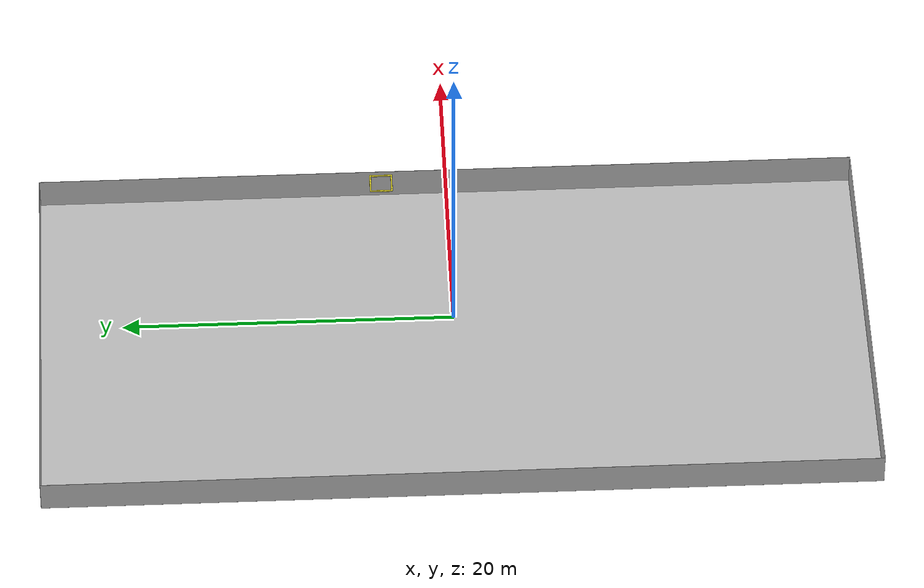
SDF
<?xml version="1.0" ?>
<sdf version="1.6">
  <world name="sauvc_pool">
	<!-- Setting the physics and scene -->
    <scene>
      <ambient>0.01 0.01 0.01 1.0</ambient>
      <sky>
        <clouds>
          <speed>12</speed>
        </clouds>
      </sky>
      <shadows>1</shadows>
    </scene>

    <!-- Lights: Global -->
    <light type="directional" name="sun1">
      <pose>20 0 100 0 0 0</pose>
      <diffuse>1 1 1 1</diffuse>
      <specular>1 1 1 1</specular>
      <direction>0.3 0.3 -1</direction>
      <cast_shadows>false</cast_shadows>
    </light>
    <light type="directional" name="sun_diffuse">
      <pose>-20 0 -100 0 0 0</pose>
      <diffuse>0.46 0.46 0.46 1</diffuse>
      <specular>0 0 0 1</specular>
      <direction>-0.3 -0.3 -1</direction>
      <cast_shadows>false</cast_shadows>
    </light>

    <!-- Lights: Focus -->
    <light name='q_gate_focus_1' type='point'>
      <pose frame=''>16.343 -16.9786 1 0 -0 0</pose>
      <diffuse>0.5 0.5 0.5 1</diffuse>
      <specular>0.1 0.1 0.1 1</specular>
      <attenuation>
        <range>20</range>
        <constant>0.5</constant>
        <linear>0.01</linear>
        <quadratic>0.001</quadratic>
      </attenuation>
      <cast_shadows>0</cast_shadows>
      <direction>0 0 -1</direction>
    </light>
    <light name='q_gate_focus_2' type='point'>
      <pose frame=''>10.5076 -15.5392 1 0 -0 0</pose>
      <diffuse>0.5 0.5 0.5 1</diffuse>
      <specular>0.1 0.1 0.1 1</specular>
      <attenuation>
        <range>20</range>
        <constant>0.5</constant>
        <linear>0.01</linear>
        <quadratic>0.001</quadratic>
      </attenuation>
      <cast_shadows>0</cast_shadows>
      <direction>0 0 -1</direction>
    </light>

	<light name='gate_focus_1' type='point'>
      <pose frame=''>11.1512 9.32795 1 0 -0 0</pose>
      <diffuse>0.5 0.5 0.5 1</diffuse>
      <specular>0.1 0.1 0.1 1</specular>
      <attenuation>
        <range>20</range>
        <constant>0.5</constant>
        <linear>0.01</linear>
        <quadratic>0.001</quadratic>
      </attenuation>
      <cast_shadows>0</cast_shadows>
      <direction>0 0 -1</direction>
    </light>
    <light name='gate_focus_2' type='point'>
      <pose frame=''>11.0884 8.42621 1 0 -0 0</pose>
      <diffuse>0.5 0.5 0.5 1</diffuse>
      <specular>0.1 0.1 0.1 1</specular>
      <attenuation>
        <range>20</range>
        <constant>0.5</constant>
        <linear>0.01</linear>
        <quadratic>0.001</quadratic>
      </attenuation>
      <cast_shadows>0</cast_shadows>
      <direction>0 0 -1</direction>
    </light>
    <light name='gate_focus_3' type='point'>
      <pose frame=''>3.57644 5.66953 1 0 -0 0</pose>
      <diffuse>0.5 0.5 0.5 1</diffuse>
      <specular>0.1 0.1 0.1 1</specular>
      <attenuation>
        <range>20</range>
        <constant>0.5</constant>
        <linear>0.01</linear>
        <quadratic>0.001</quadratic>
      </attenuation>
      <cast_shadows>0</cast_shadows>
      <direction>0 0 -1</direction>
    </light>

	<light name='mat_focus_0' type='point'>
      <pose frame=''>-13.0246 -1.13836 1 0 -0 0</pose>
      <diffuse>0.5 0.5 0.5 1</diffuse>
      <specular>0.1 0.1 0.1 1</specular>
      <attenuation>
        <range>20</range>
        <constant>0.5</constant>
        <linear>0.01</linear>
        <quadratic>0.001</quadratic>
      </attenuation>
      <cast_shadows>0</cast_shadows>
      <direction>0 0 -1</direction>
    </light>
    <light name='mat_focus_1' type='point'>
      <pose frame=''>-13.2723 -1.55147 1 0 -0 0</pose>
      <diffuse>0.5 0.5 0.5 1</diffuse>
      <specular>0.1 0.1 0.1 1</specular>
      <attenuation>
        <range>20</range>
        <constant>0.5</constant>
        <linear>0.01</linear>
        <quadratic>0.001</quadratic>
      </attenuation>
      <cast_shadows>0</cast_shadows>
      <direction>0 0 -1</direction>
    </light>
    <light name='mat_focus_2' type='point'>
      <pose frame=''>-12.6848 1.07085 1 0 -0 0</pose>
      <diffuse>0.5 0.5 0.5 1</diffuse>
      <specular>0.1 0.1 0.1 1</specular>
      <attenuation>
        <range>20</range>
        <constant>0.5</constant>
        <linear>0.01</linear>
        <quadratic>0.001</quadratic>
      </attenuation>
      <cast_shadows>0</cast_shadows>
      <direction>0 0 -1</direction>
    </light>

	<!-- Ocean -->
	<include>
		<uri>model://sauvc_pool</uri>
	</include>

    <!-- Start point -->
    <include>
	  	<uri>model://start_point</uri>
  	</include>

    <!-- Plugins -->
    <plugin name="freefloating_gazebo_fluid" filename="libfreefloating_gazebo_fluid.so">
        <descriptionParam>robot_description</descriptionParam>
        <fluidTopic>current</fluidTopic>
        <alwaysOn>true</alwaysOn>
        <surface>0 0 0</surface>
        <updateRate>.001</updateRate>
    </plugin>

	<!-- Camera -->
	<gui fullscreen='0'>
      <camera name='user_camera'>
          <pose frame=''>10.8266 3.99287 -0.037785 0 0.078431 -0.018495</pose>
        <view_controller>orbit</view_controller>
        <projection_type>perspective</projection_type>
      </camera>
  </gui>

  </world>
</sdf>

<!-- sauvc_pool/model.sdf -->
<sdf version="1.6">
    <model name='sauvc_pool'>
      <static>1</static>
      <link name='sauvc_pool_base'>
        <visual name='pool_floor'>
          <cast_shadows>1</cast_shadows>
          <pose frame=''>0 0 -2.01 0 -0 0</pose>
          <geometry>
            <box>
              <size>25 50 0.01</size>
            </box>
          </geometry>
          <material>
            <script>
              <uri>file://models/sauvc_pool/materials/scripts/sauvc_pool.material</uri>
              <name>sauvc_pool/floor_sun</name>
            </script>
            <emissive>0.6 0.6 0.6 1</emissive>
          </material>
        </visual>
        <collision name='pool_floor'>
          <pose frame=''>0 0 -2.01 0 -0 0</pose>
          <geometry>
            <box>
              <size>25 50 0.01</size>
            </box>
          </geometry>
          <max_contacts>1000</max_contacts>
          <surface>
            <contact>
              <ode/>
            </contact>
            <bounce/>
            <friction>
              <torsional>
                <ode/>
              </torsional>
              <ode/>
            </friction>
          </surface>
        </collision>
       <self_collide>0</self_collide>
        <enable_wind>0</enable_wind>
        <kinematic>0</kinematic>
      </link>

      <link name='north_link'>
		<visual name='north'>
			<pose>12.5 0 -1 0 -1.57079 0</pose>
          <geometry>
            <box>
              <size>2.01 50 0.01</size>
            </box>
          </geometry>
          <material>
            <script>
              <uri>file://models/sauvc_pool/materials/scripts/sauvc_pool.material</uri>
              <name>sauvc_pool/wall</name>
            </script>
            <emissive>0.6 0.6 0.6 1</emissive>
          </material>
         </visual>
          <collision name='north'>
			  <pose>12.5 0 -1 0 -1.57079 0</pose>
          <geometry>
            <box>
              <size>2.01 50 0.01</size>
            </box>
          </geometry>
          <max_contacts>40</max_contacts>
          <surface>
            <contact>
              <ode/>
            </contact>
            <bounce/>
            <friction>
              <torsional>
                <ode/>
              </torsional>
              <ode/>
            </friction>
          </surface>
        </collision>
          <self_collide>0</self_collide>
          <enable_wind>0</enable_wind>
          <kinematic>0</kinematic>
        </link>
      <joint type="fixed" name="north_link_joint">
        <child>north_link</child>
        <parent>sauvc_pool_base</parent>
      </joint>

      <link name='south_link'>
		<visual name='south'>
			<pose>-12.5 0 -1 0 -1.57079 0</pose>
          <geometry>
            <box>
              <size>2.01 50 0.01</size>
            </box>
          </geometry>
          <material>
            <script>
              <uri>file://models/sauvc_pool/materials/scripts/sauvc_pool.material</uri>
              <name>sauvc_pool/wall</name>
            </script>
            <emissive>0.6 0.6 0.6 1</emissive>
          </material>
         </visual>
          <collision name='south'>
			  <pose>-12.5 0 -1 0 -1.57079 0</pose>
          <geometry>
            <box>
              <size>2.01 50 0.01</size>
            </box>
          </geometry>
          <max_contacts>40</max_contacts>
          <surface>
            <contact>
              <ode/>
            </contact>
            <bounce/>
            <friction>
              <torsional>
                <ode/>
              </torsional>
              <ode/>
            </friction>
          </surface>
        </collision>
          <self_collide>0</self_collide>
          <enable_wind>0</enable_wind>
          <kinematic>0</kinematic>
        </link>
      <joint type="fixed" name="south_link_joint">
        <child>south_link</child>
        <parent>sauvc_pool_base</parent>
      </joint>

      <link name='east_link'>
		<visual name='east'>
		 <pose>0 25 -1 -1.5708 0 0</pose>
          <geometry>
            <box>
              <size>25 2.01 0.01</size>
            </box>
          </geometry>
          <material>
            <script>
              <uri>file://models/sauvc_pool/materials/scripts/sauvc_pool.material</uri>
              <name>sauvc_pool/wall</name>
            </script>
            <emissive>0.6 0.6 0.6 1</emissive>
          </material>
         </visual>
          <collision name='east'>
		  <pose>0 25 -1 -1.5708 0 0</pose>
          <geometry>
            <box>
              <size>25 2.01 0.01</size>
            </box>
          </geometry>
          <max_contacts>40</max_contacts>
          <surface>
            <contact>
              <ode/>
            </contact>
            <bounce/>
            <friction>
              <torsional>
                <ode/>
              </torsional>
              <ode/>
            </friction>
          </surface>
        </collision>
          <self_collide>0</self_collide>
          <enable_wind>0</enable_wind>
          <kinematic>0</kinematic>
        </link>
      <joint type="fixed" name="east_link_joint">
        <child>east_link</child>
        <parent>sauvc_pool_base</parent>
      </joint>

      <link name='west_link'>
		<visual name='west'>
		 <pose>0 -25 -1 -1.5708 0 0</pose>
          <geometry>
            <box>
              <size>25 2.01 0.01</size>
            </box>
          </geometry>
          <material>
            <script>
              <uri>file://models/sauvc_pool/materials/scripts/sauvc_pool.material</uri>
              <name>sauvc_pool/wall</name>
            </script>
            <emissive>0.6 0.6 0.6 1</emissive>
          </material>
         </visual>
          <collision name='west'>
		  <pose>0 -25 -1 -1.5708 0 0</pose>
          <geometry>
            <box>
              <size>25 2.01 0.01</size>
            </box>
          </geometry>
          <max_contacts>40</max_contacts>
          <surface>
            <contact>
              <ode/>
            </contact>
            <bounce/>
            <friction>
              <torsional>
                <ode/>
              </torsional>
              <ode/>
            </friction>
          </surface>
        </collision>
          <self_collide>0</self_collide>
          <enable_wind>0</enable_wind>
          <kinematic>0</kinematic>
        </link>
      <joint type="fixed" name="west_link_joint">
        <child>west_link</child>
        <parent>sauvc_pool_base</parent>
      </joint>
      <pose frame=''>0 0 0 0 -0 0</pose>
    </model>
</sdf>

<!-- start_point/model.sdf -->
<sdf version="1.6">

    <model name='start_point'>
      <link name='start'>
        <pose frame=''>0 0 0 0 -0 0</pose>
        <inertial>
          <pose frame=''>-5.1e-05 4.8e-05 5e-06 0 -0 0</pose>
          <mass>40.85</mass>
          <inertia>
            <ixx>11.586</ixx>
            <ixy>-9.9817e-08</ixy>
            <ixz>8.7525e-06</ixz>
            <iyy>11.586</iyy>
            <iyz>1.539e-05</iyz>
            <izz>23.121</izz>
          </inertia>
        </inertial>
        <collision name='start_collision'>
          <pose frame=''>0 0 0 1.5708 -0 0</pose>
          <geometry>
            <mesh>
              <scale>1 1 1</scale>
              <uri>file://meshes/sauvc_pool/start.STL</uri>
            </mesh>
          </geometry>
          <max_contacts>10</max_contacts>
          <surface>
            <contact>
              <ode/>
            </contact>
            <bounce/>
            <friction>
              <torsional>
                <ode/>
              </torsional>
              <ode/>
            </friction>
          </surface>
        </collision>
        <visual name='start_visual'>
          <pose frame=''>0 0 0 1.5708 -0 0</pose>
          <geometry>
            <mesh>
              <scale>1 1 1</scale>
              <uri>file://meshes/sauvc_pool/start.STL</uri>
            </mesh>
          </geometry>
        <material>
          <script>
            <uri>file://media/materials/scripts/gazebo.material</uri>
            <name>Gazebo/Yellow</name>
          </script>
        </material>
        </visual>
        <self_collide>0</self_collide>
        <enable_wind>0</enable_wind>
        <kinematic>0</kinematic>
      </link>
      <static>1</static>
      <pose frame=''>11.5 4 0 0 -0 0</pose>
    </model>

</sdf>
